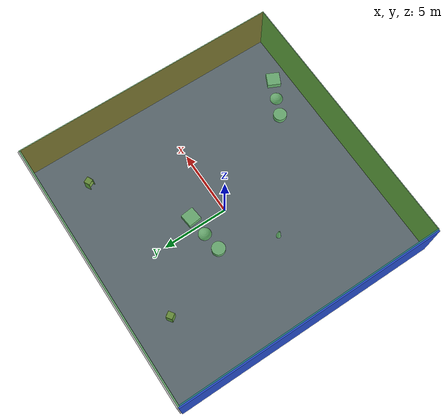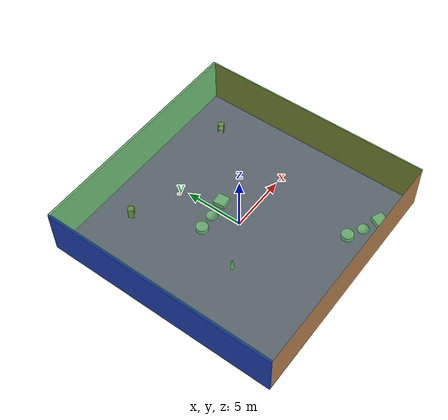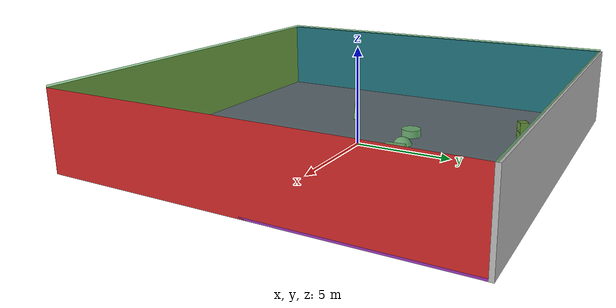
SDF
<sdf version="1.4">
 <world name="default">
  <physics type="ode">
   <max_step_size>0.001</max_step_size>
   <real_time_factor>1</real_time_factor>
   <real_time_update_rate>1000</real_time_update_rate>
   <gravity>0 0 -9.8</gravity>
  </physics>
  <scene><ambient>0.4 0.4 0.4 1</ambient><background>0.7 0.7 0.7 1</background><shadows>1</shadows></scene>
  <model name="Surrounding">
   <static>1</static>
   <link name="Ceiling">
    <collision name="Ceiling_Collision"><geometry><box><size>20 20 0.1</size></box></geometry></collision>
    <visual name="Ceiling_Visual">
     <geometry><box><size>20 20 0.1</size></box></geometry>
     <material>
      <script><uri>file://media/materials/scripts/gazebo.material</uri><name>Gazebo/GreenTransparent</name></script>
     </material>
    </visual>
    <pose>0 0 4.05 0 0 0</pose>
   </link>
   <link name="Wall_South">
    <collision name="Wall_South_Collision">
     <geometry><box><size>20 0 4</size></box></geometry>
     <pose>0 0 2 0 -0 0</pose>
    </collision>
    <visual name="Wall_South_Visual">
     <pose>0 0 2 0 -0 0</pose>
     <geometry><box><size>20 0 4</size></box></geometry>
     <material>
      <script><uri>file://media/materials/scripts/gazebo.material</uri><name>Gazebo/Wood</name></script>
     </material>
    </visual>
    <velocity_decay><linear>0</linear><angular>0</angular></velocity_decay>
    <pose>0 -10 0 0 -0 0</pose>
   </link>
   <link name="Wall_East">
    <collision name="Wall_21_Collision">
     <geometry><box><size>20 0 4</size></box></geometry>
     <pose>0 0 2 0 -0 0</pose>
    </collision>
    <visual name="Wall_21_Visual">
     <pose>0 0 2 0 -0 0</pose>
     <geometry><box><size>20 0 4</size></box></geometry>
     <material>
      <script><uri>file://media/materials/scripts/gazebo.material</uri><name>Gazebo/RedGlow</name></script>
     </material>
    </visual>
    <velocity_decay><linear>0</linear><angular>0</angular></velocity_decay>
    <pose>10 0 0 0 -0 1.5708</pose>
   </link>
   <link name="Wall_North">
    <collision name="Wall_22_Collision">
     <geometry><box><size>20 0.2 4</size></box></geometry>
     <pose>0 0 2 0 -0 0</pose>
    </collision>
    <visual name="Wall_22_Visual">
     <pose>0 0 2 0 -0 0</pose>
     <geometry><box><size>20 0.2 4</size></box></geometry>
     <material>
      <script><uri>file://media/materials/scripts/gazebo.material</uri><name>Gazebo/Pioneer2Body</name></script>
     </material>
    </visual>
    <velocity_decay><linear>0</linear><angular>0</angular></velocity_decay>
    <pose>0 10 0 0 -0 0</pose>
   </link>
   <link name="Wall_West">
    <collision name="Wall_23_Collision">
     <geometry><box><size>20 0.2 4</size></box></geometry>
     <pose>0 0 2 0 -0 0</pose>
    </collision>
    <visual name="Wall_23_Visual">
     <pose>0 0 2 0 -0 0</pose>
     <geometry><box><size>20 0.2 4</size></box></geometry>
     <material>
      <script><uri>file://media/materials/scripts/gazebo.material</uri><name>Gazebo/BlueGlow</name></script>
     </material>
    </visual>
    <velocity_decay><linear>0</linear><angular>0</angular></velocity_decay>
    <pose>-10 0 0 0 0 -1.5708</pose>
   </link>
   <link name="Ground_link">
    <collision name="collision">
     <pose>0 0 .05 0 -0 0</pose>
     <geometry><box><size>20 20 0.1</size></box></geometry>
    </collision>
    <visual name="visual">
     <pose>0 0 .05 0 -0 0</pose>
     <geometry><box><size>20 20 0.1</size></box></geometry>
     <material>
      <script><uri>file://media/materials/scripts/gazebo.material</uri><name>Gazebo/Purple</name></script>
     </material>
    </visual>
   </link>
   <static>1</static>
  </model>
  <spherical_coordinates>
   <surface_model>EARTH_WGS84</surface_model>
   <latitude_deg>0</latitude_deg>
   <longitude_deg>0</longitude_deg>
   <elevation>0</elevation>
   <heading_deg>0</heading_deg>
  </spherical_coordinates>
  <light name="lightball_0" type="diffuse">
   <diffuse>0.8 0.8 0.8 1</diffuse>
   <specular>0.2 0.2 0.2 1</specular>
   <attenuation>
    <range>100</range>
    <constant>0.7</constant>
    <linear>0.01</linear>
    <quadratic>0.001</quadratic>
   </attenuation>
   <direction>-0.5 0.1 -0.9</direction>
   <pose>7.60100686028 3.56438006083 0.595901589757 0 0 0</pose>
  </light>
  <light name="lightball_1" type="diffuse">
   <diffuse>0.8 0.8 0.8 1</diffuse>
   <specular>0.2 0.2 0.2 1</specular>
   <attenuation>
    <range>100</range>
    <constant>0.7</constant>
    <linear>0.01</linear>
    <quadratic>0.001</quadratic>
   </attenuation>
   <direction>-0.5 0.1 -0.9</direction>
   <pose>6.34305165082 -4.61303035943 2.23005759321 0 0 0</pose>
  </light>
  <light name="lightball_2" type="diffuse">
   <diffuse>0.8 0.8 0.8 1</diffuse>
   <specular>0.2 0.2 0.2 1</specular>
   <attenuation>
    <range>100</range>
    <constant>0.7</constant>
    <linear>0.01</linear>
    <quadratic>0.001</quadratic>
   </attenuation>
   <direction>-0.5 0.1 -0.9</direction>
   <pose>-8.22333522869 4.6461105585 2.97345460442 0 0 0</pose>
  </light>
  <include>
   <uri>model://construction_cone</uri>
   <pose>-3.70119768818 -2.0517447844 0 0 0 2.40595821198</pose>
  </include>
  <include><uri>model://cabinet</uri><pose>-4.42679163855 7.28710154549 0 0 0 2.17012871018</pose></include>
  <include>
   <uri>model://textured_shapes</uri>
   <pose>-0.71614798741 2.16615903366 0 0 0 1.68419034447</pose>
  </include>
  <include>
   <uri>model://textured_shapes</uri>
   <pose>5.24504004056 -8.1586381856 0 0 0 1.12457102963</pose>
  </include>
  <include><uri>model://cabinet</uri><pose>6.89436757342 7.00014016642 0 0 0 0.481794760892</pose></include>
 </world>
</sdf>

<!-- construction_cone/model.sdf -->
<sdf version="1.5">
  <model name="Construction Cone">
    <link name="link">
      <collision name="collision">
        <geometry>
          <mesh>
            <scale>10 10 10</scale>
            <uri>file://isr-testbed/construction_cone/meshes/construction_cone.dae</uri>
          </mesh>
        </geometry>
      </collision>
      <visual name="visual">
        <geometry>
          <mesh>
            <scale>10 10 10</scale>
            <uri>file://isr-testbed/construction_cone/meshes/construction_cone.dae</uri>
          </mesh>
        </geometry>
      </visual>
    </link>
  </model>
</sdf>

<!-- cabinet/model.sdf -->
<sdf version="1.5">
  <model name="cabinet">
    <static>true</static>
    <link name="cabinet_bottom_plate">
      <inertial>
        <pose>0 0 -1 0 0 0</pose>
        <inertia>
          <ixx>2.050000</ixx>
          <ixy>0</ixy>
          <ixz>0</ixz>
          <iyy>2.050000</iyy>
          <iyz>0</iyz>
          <izz>2.050000</izz>
        </inertia>
        <mass>25.000000</mass>
      </inertial>
      <collision name="cabinet_bottom_plate_geom">
        <pose>0 0 0.010000 0 0 0</pose>
        <geometry>
          <box>
            <size>0.450000 0.450000 0.020000</size>
          </box>
        </geometry>
      </collision>
      <visual name="cabinet_bottom_plate_geom_visual">
        <pose>0 0 0.010000 0 0 0</pose>
        <geometry>
          <box>
            <size>0.450000 0.450000 0.020000</size>
          </box>
        </geometry>
        <material>
          <script>
            <uri>model://media/materials/scripts/gazebo.material</uri>
            <name>Gazebo/Wood</name>
          </script>
        </material>
      </visual>
      <collision name="cabinet_bottom_plate_geom_cabinet_back_plate">
        <pose>0.235000 0 0.510000 0 0 0</pose>
        <geometry>
          <box>
            <size>0.020000 0.450000 1.020000</size>
          </box>
        </geometry>
      </collision>
      <visual name="cabinet_bottom_plate_geom_cabinet_back_plate_visual">
        <pose>0.235000 0 0.510000 0 0 0</pose>
        <geometry>
          <box>
            <size>0.020000 0.450000 1.020000</size>
          </box>
        </geometry>
        <material>
          <script>
            <uri>model://media/materials/scripts/gazebo.material</uri>
            <name>Gazebo/Wood</name>
          </script>
        </material>
      </visual>
      <collision name="cabinet_bottom_plate_geom_cabinet_left_plate">
        <pose>0 0.235000 0.510000 0 0 0</pose>
        <geometry>
          <box>
            <size>0.450000 0.020000 1.020000</size>
          </box>
        </geometry>
      </collision>
      <visual name="cabinet_bottom_plate_geom_cabinet_left_plate_visual">
        <pose>0 0.235000 0.510000 0 0 0</pose>
        <geometry>
          <box>
            <size>0.450000 0.020000 1.020000</size>
          </box>
        </geometry>
        <material>
          <script>
            <uri>model://media/materials/scripts/gazebo.material</uri>
            <name>Gazebo/Wood</name>
          </script>
        </material>
      </visual>
      <collision name="cabinet_bottom_plate_geom_cabinet_middle_plate">
        <pose>0 0 0.510000 0 0 0</pose>
        <geometry>
          <box>
            <size>0.450000 0.450000 0.020000</size>
          </box>
        </geometry>
      </collision>
      <visual name="cabinet_bottom_plate_geom_cabinet_middle_plate_visual">
        <pose>0 0 0.510000 0 0 0</pose>
        <geometry>
          <box>
            <size>0.450000 0.450000 0.020000</size>
          </box>
        </geometry>
        <material>
          <script>
            <uri>model://media/materials/scripts/gazebo.material</uri>
            <name>Gazebo/Wood</name>
          </script>
        </material>
      </visual>
      <collision name="cabinet_bottom_plate_geom_cabinet_right_plate">
        <pose>0 -0.235000 0.510000 0 0 0</pose>
        <geometry>
          <box>
            <size>0.450000 0.020000 1.020000</size>
          </box>
        </geometry>
      </collision>
      <visual name="cabinet_bottom_plate_geom_cabinet_right_plate_visual">
        <pose>0 -0.235000 0.510000 0 0 0</pose>
        <geometry>
          <box>
            <size>0.450000 0.020000 1.020000</size>
          </box>
        </geometry>
        <material>
          <script>
            <uri>model://media/materials/scripts/gazebo.material</uri>
            <name>Gazebo/Wood</name>
          </script>
        </material>
      </visual>
      <collision name="cabinet_bottom_plate_geom_cabinet_top_plate">
        <pose>0 0 1.010000 0 0 0</pose>
        <geometry>
          <box>
            <size>0.450000 0.450000 0.020000</size>
          </box>
        </geometry>
      </collision>
      <visual name="cabinet_bottom_plate_geom_cabinet_top_plate_visual">
        <pose>0 0 1.010000 0 0 0</pose>
        <geometry>
          <box>
            <size>0.450000 0.450000 0.020000</size>
          </box>
        </geometry>
        <material>
          <script>
            <uri>model://media/materials/scripts/gazebo.material</uri>
            <name>Gazebo/Wood</name>
          </script>
        </material>
      </visual>
    </link>
  </model>
</sdf>

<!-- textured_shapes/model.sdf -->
<sdf version="1.6">
  <model name="textured_shapes">
    <pose>0 0 0.5 0 0 0</pose>
    <link name="box">
      <pose>0 -1.5 0 0 0 0</pose>
      <collision name="collision">
        <geometry>
          <box>
            <size>1 1 1</size>
          </box>
        </geometry>
      </collision>
      <visual name="visual">
        <geometry>
          <box>
            <size>1 1 1</size>
          </box>
        </geometry>
        <material>
          <script>
            <uri>model://../model_source/models/textured_shapes/materials/scripts</uri>
            <uri>model://../model_source/models/textured_shapes/materials/textures</uri>
            <name>TexturedShape/Squares</name>
          </script>
        </material>
      </visual>
    </link>
    <link name="sphere">
      <collision name="collision">
        <geometry>
          <sphere>
            <radius>0.5</radius>
          </sphere>
        </geometry>
      </collision>
      <visual name="visual">
        <geometry>
          <sphere>
            <radius>0.5</radius>
          </sphere>
        </geometry>
        <material>
          <script>
            <uri>model://../model_source/models/textured_shapes/materials/scripts</uri>
            <uri>model://../model_source/models/textured_shapes/materials/textures</uri>
            <name>TexturedShape/Squares</name>
          </script>
        </material>
      </visual>
    </link>
    <link name="cylinder">
      <pose>0 1.5 0 0 0 0</pose>
      <collision name="collision">
        <geometry>
          <cylinder>
            <radius>0.5</radius>
            <length>1</length>
          </cylinder>
        </geometry>
      </collision>
      <visual name="visual">
        <geometry>
          <cylinder>
            <radius>0.5</radius>
            <length>1</length>
          </cylinder>
        </geometry>
        <material>
          <script>
            <uri>model://../model_source/models/textured_shapes/materials/scripts</uri>
            <uri>model://../model_source/models/textured_shapes/materials/textures</uri>
            <name>TexturedShape/Squares</name>
          </script>
        </material>
      </visual>
    </link>
  </model>
</sdf>
